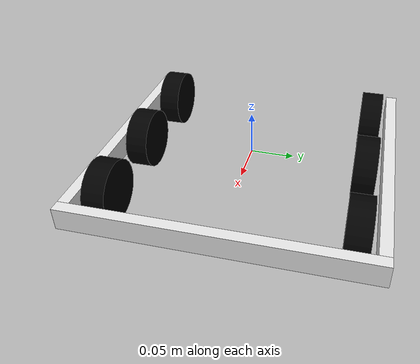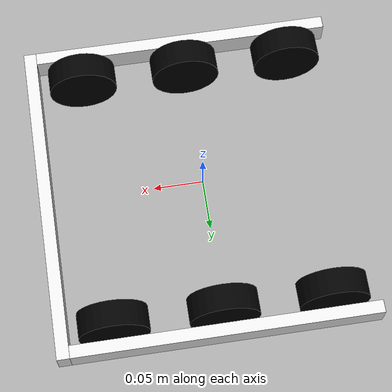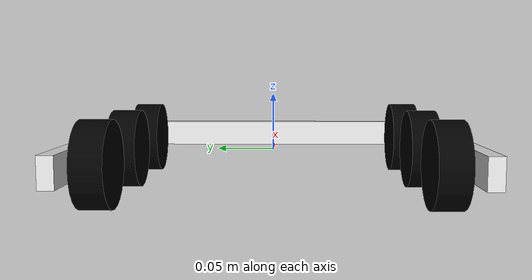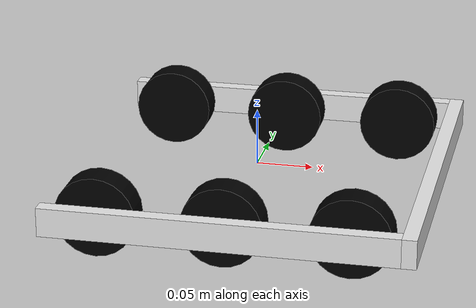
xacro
<?xml version="1.0"?>
<robot name="tankbot" xmlns:xacro="http://ros.org/wiki/xacro">
    <xacro:include filename="$(find ghost_sim_examples)/urdf/tank_macros.xacro"/>
    <xacro:property name="r_wheel" value="0.034925"/>
    <xacro:property name="width_wheel" value="0.0254"/>
    <xacro:property name="roller_radius" value="0.00635"/>
    <xacro:property name="roller_width" value="0.0127"/>
    <xacro:property name="com_radius" value="0.02"/>
    <xacro:property name="d2r" value="${3.14159/180}"/>
    <xacro:property name="mu" value="0.01"/>
    <xacro:property name="mu2" value="1.0"/>
    <xacro:property name="izz" value="0.000914"/>
     <material name="white">
        <color rgba="1 1 1 1"/>
     </material>

    <link name="base_link">
        <visual>
        <origin xyz="0 0 0" rpy="0 0 0"/>
        <geometry>
            <box size="0 0 0"/>
        </geometry>
            <material name="silver">
                <color rgba="0.9 0.9 0.9 1.0"/>
            </material>
        </visual>
        <collision>
        <geometry>
            <box size="0 0 0"/>
        </geometry>
        </collision>

        <inertial>
            <origin xyz="0 0 0" rpy="0 0 0"/>
            <mass value="5"/>
            <inertia
                ixx="0.0" ixy="0.0" ixz="0.0"
                iyy="0.094839" iyz="0.0"
                izz="0.182903"/>
        </inertial>

        <gazebo>
            <maxVel>3.0</maxVel>
        </gazebo>
    </link>

     <link name="back_bar">
        <visual>
        <origin xyz="0 0 0" rpy="0 0 0"/>
        <geometry>
            <box size="0.0127 0.3302 0.0254"/>
        </geometry>
            <material name="silver">
                <color rgba="0.9 0.9 0.9 1.0"/>
            </material>
        </visual>
        <inertial>
            <origin xyz="0 0 0" rpy="0 0 0"/>
            <mass value="10"/>
            <inertia
                ixx="0.0914" ixy="0.0" ixz="0.0"
                iyy="0.000672" iyz="0.0"
                izz="0.0910"/>
        </inertial>

        <gazebo>
            <maxVel>3.0</maxVel>
        </gazebo>
    </link>

    <joint name="back_bar_joint" type="fixed">
        <parent link="base_link"/>
        <child link="back_bar"/>
        <origin xyz="0.15875 0 0" rpy="0 0 0"/>
        <axis xyz="0 0 1"/>
    </joint>

    <link name="left_bar">
        <visual>
        <origin xyz="0 0 0" rpy="0 0 0"/>
        <geometry>
            <box size="0.0127 0.3048 0.0254"/>
        </geometry>
            <material name="silver">
                <color rgba="0.9 0.9 0.9 1.0"/>
            </material>
        </visual>
        <inertial>
            <origin xyz="0 0 0" rpy="0 0 0"/>
            <mass value="10"/>
            <inertia
                ixx="0.0914" ixy="0.0" ixz="0.0"
                iyy="0.000672" iyz="0.0"
                izz="0.0910"/>
        </inertial>

        <gazebo>
            <maxVel>3.0</maxVel>
        </gazebo>
    </link>

    <joint name="left_bar_joint" type="fixed">
        <parent link="base_link"/>
        <child link="left_bar"/>
        <origin xyz="0 0.15875 0" rpy="0 0 1.5708"/>
        <axis xyz="0 0 1"/>
    </joint>

    <link name="right_bar">
        <visual>
        <origin xyz="0 0 0" rpy="0 0 0"/>
        <geometry>
            <box size="0.0127 0.3048 0.0254"/>
        </geometry>
            <material name="silver">
                <color rgba="0.9 0.9 0.9 1.0"/>
            </material>
    </visual>
        <inertial>
            <origin xyz="0 0 0" rpy="0 0 0"/>
            <mass value="10"/>
            <inertia
                ixx="0.0914" ixy="0.0" ixz="0.0"
                iyy="0.000672" iyz="0.0"
                izz="0.0910"/>
        </inertial>

        <gazebo>
            <maxVel>3.0</maxVel>
        </gazebo>
    </link>

    <joint name="right_bar_joint" type="fixed">
        <parent link="base_link"/>
        <child link="right_bar"/>
        <origin xyz="0 -0.15875 0" rpy="0 0 1.5708"/>
        <axis xyz="0 0 1"/>
    </joint>

 <!--Wheel Modules-->
    <xacro:wheel_macro id="front_left" r_wheel="${r_wheel}" width_wheel="${width_wheel}"   collision_factor="8" mu="${mu}" mu2="${mu2}" izz="${izz}"></xacro:wheel_macro>
    <xacro:wheel_macro id="front_right" r_wheel="${r_wheel}" width_wheel="${width_wheel}"  collision_factor="8" mu="${mu}" mu2="${mu2}" izz="${izz}"></xacro:wheel_macro>
    <xacro:wheel_macro id="back_left" r_wheel="${r_wheel}" width_wheel="${width_wheel}"  collision_factor="8" mu="${mu}" mu2="${mu2}" izz="${izz}"></xacro:wheel_macro>
    <xacro:wheel_macro id="back_right" r_wheel="${r_wheel}" width_wheel="${width_wheel}"   collision_factor="8" mu="${mu}" mu2="${mu2}" izz="${izz}"></xacro:wheel_macro>
    <xacro:wheel_macro id="middle_left" r_wheel="${r_wheel}" width_wheel="${width_wheel}"   collision_factor="8" mu="${mu}" mu2="${mu2}" izz="${izz}"></xacro:wheel_macro>
    <xacro:wheel_macro id="middle_right" r_wheel="${r_wheel}" width_wheel="${width_wheel}"   collision_factor="8" mu="${mu}" mu2="${mu2}" izz="${izz}"></xacro:wheel_macro>

    <joint name="wheel_joint_back_left" type="continuous">
        <parent link="left_bar"/>
        <child link="wheel_link_back_left"/>
        <origin xyz="-0.0254 -0.10795 0" rpy="${-90*d2r} 0 ${90*d2r}"/>
        <axis xyz="0 0 1"/>
    </joint>

    <joint name="wheel_joint_back_right" type="continuous">
        <parent link="right_bar"/>
        <child link="wheel_link_back_right"/>
        <origin xyz="0.0254 -0.10795 0" rpy="${-90*d2r} 0 ${90*d2r}"/>
        <axis xyz="0 0 1"/>
    </joint>

    <joint name="wheel_joint_front_left" type="continuous">
        <parent link="left_bar"/>
        <child link="wheel_link_front_left"/>
        <origin xyz="-0.0254 0.10795 0" rpy="${-90*d2r} 0 ${90*d2r}"/>
        <axis xyz="0 0 1"/>
    </joint>

    <joint name="wheel_joint_front_right" type="continuous">
        <parent link="right_bar"/>
        <child link="wheel_link_front_right"/>
        <origin xyz="0.0254 0.10795 0" rpy="${-90*d2r} 0 ${90*d2r}"/>
        <axis xyz="0 0 1"/>
    </joint>

        <joint name="wheel_joint_middle_left" type="continuous">
        <parent link="left_bar"/>
        <child link="wheel_link_middle_left"/>
        <origin xyz="-0.0254 0 0" rpy="${-90*d2r} 0 ${90*d2r}"/>
        <axis xyz="0 0 1"/>
    </joint>

    <joint name="wheel_joint_middle_right" type="continuous">
        <parent link="right_bar"/>
        <child link="wheel_link_middle_right"/>
        <origin xyz="0.0254 0 0" rpy="${-90*d2r} 0 ${90*d2r}"/>
        <axis xyz="0 0 1"/>
    </joint>

    <gazebo>
        <plugin name="gazebo_ros_joint_state_publisher" filename="libgazebo_ros_joint_state_publisher.so">
            <update_rate>100</update_rate>
            <joint_name>wheel_joint_back_left</joint_name>
            <joint_name>wheel_joint_back_right</joint_name>
            <joint_name>wheel_joint_middle_left</joint_name>
            <joint_name>wheel_joint_middle_right</joint_name>
            <joint_name>wheel_joint_front_left</joint_name>
            <joint_name>wheel_joint_front_right</joint_name>
        </plugin>
    </gazebo>

</robot>

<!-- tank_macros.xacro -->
<robot xmlns:xacro="http://www.ros.org/wiki/xacro">

    <!-- Wheel Macro -->
    <xacro:macro name="wheel_macro" params="id r_wheel width_wheel collision_factor mu mu2 izz">
    <link name="wheel_link_${id}">
            <visual>
                <geometry>
                    <cylinder radius="${r_wheel}" length="${width_wheel}"/>
                </geometry>
                <material name="black">
                    <color rgba="0 0 0 1.0"/>
                </material>
            </visual>

            <collision>
                <origin xyz="0 0 0" rpy="0 0 0"/>
                <geometry>
                    <cylinder radius="${r_wheel}" length="${width_wheel/collision_factor}"/>
                </geometry>
            </collision>

            <!--Inertia estimated for solid cylinder of radius 2.5" and height 1" with mass 1 lb-->
            <inertial>
                <origin xyz="0 0 0" rpy="0 0 0"/>
                <mass value="0.4545"/>
                <inertia
                    ixx="0.000482" ixy="0.0" ixz="0.0"
                    iyy="0.000482" iyz="0.0"
                    izz="${izz}"/>
            </inertial>
    </link>

    <gazebo reference="wheel_link_${id}">
        <collision>
            <origin xyz="0 0 0" rpy="0 0 0"/>
            <geometry>
                <cylinder>
                    <radius>${r_wheel}</radius>
                    <length>${width_wheel/collision_factor}</length>
                </cylinder>
            </geometry>

            <surface>
                <friction>
                <ode>
                    <mu>${mu}</mu>
                    <mu2>${mu2}</mu2>
                    <fdir1>1 0 0</fdir1>
                </ode>
                </friction>
            </surface>
        </collision>

        <material>Gazebo/White</material>
    </gazebo>
    </xacro:macro>
</robot>
